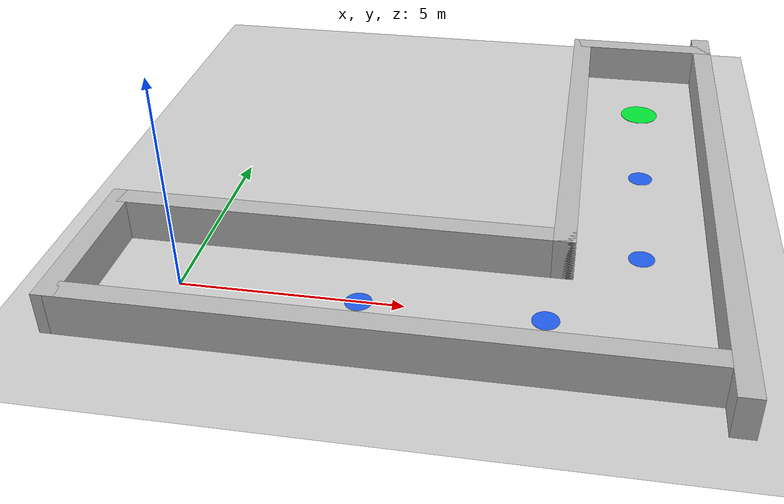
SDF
<?xml version="1.0" ?>
<sdf version="1.6">
  <world name="default">

    <physics type="ode">
      <real_time_factor>3</real_time_factor>
      <real_time_update_rate>3000</real_time_update_rate>
      <max_step_size>0.001</max_step_size>
    </physics>

    <include><uri>model://sun</uri></include>
    <include><uri>model://ground_plane</uri></include>

    <!-- ── Walls ─────────────────────────────────────────── -->

    <!-- South wall: runs full length of both corridors -->
    <model name="wall_south">
      <static>true</static>
      <pose>4.75 -1.75 0.5 0 0 0</pose>
      <link name="link">
        <collision name="c"><geometry><box><size>13.5 0.5 1.0</size></box></geometry></collision>
        <visual    name="v"><geometry><box><size>13.5 0.5 1.0</size></box></geometry>
          <material><script><uri>file://media/materials/scripts/gazebo.material</uri>
            <name>Gazebo/Brick</name></script></material>
        </visual>
      </link>
    </model>

    <!-- North wall of horizontal corridor (stops where vertical opens) -->
    <model name="wall_north_horiz">
      <static>true</static>
      <pose>3.25 1.75 0.5 0 0 0</pose>
      <link name="link">
        <collision name="c"><geometry><box><size>10.5 0.5 1.0</size></box></geometry></collision>
        <visual    name="v"><geometry><box><size>10.5 0.5 1.0</size></box></geometry>
          <material><script><uri>file://media/materials/scripts/gazebo.material</uri>
            <name>Gazebo/Brick</name></script></material>
        </visual>
      </link>
    </model>

    <!-- East wall: right side of vertical corridor -->
    <model name="wall_east">
      <static>true</static>
      <pose>11.75 5.0 0.5 0 0 0</pose>
      <link name="link">
        <collision name="c"><geometry><box><size>0.5 15.5 1.0</size></box></geometry></collision>
        <visual    name="v"><geometry><box><size>0.5 15.5 1.0</size></box></geometry>
          <material><script><uri>file://media/materials/scripts/gazebo.material</uri>
            <name>Gazebo/Brick</name></script></material>
        </visual>
      </link>
    </model>

    <!-- West wall of vertical corridor (inner left side) -->
    <model name="wall_west_vert">
      <static>true</static>
      <pose>8.25 6.875 0.5 0 0 0</pose>
      <link name="link">
        <collision name="c"><geometry><box><size>0.5 10.75 1.0</size></box></geometry></collision>
        <visual    name="v"><geometry><box><size>0.5 10.75 1.0</size></box></geometry>
          <material><script><uri>file://media/materials/scripts/gazebo.material</uri>
            <name>Gazebo/Brick</name></script></material>
        </visual>
      </link>
    </model>

    <!-- Start cap (west end of horizontal corridor) -->
    <model name="wall_start">
      <static>true</static>
      <pose>-2.0 0.0 0.5 0 0 0</pose>
      <link name="link">
        <collision name="c"><geometry><box><size>0.5 4.0 1.0</size></box></geometry></collision>
        <visual    name="v"><geometry><box><size>0.5 4.0 1.0</size></box></geometry>
          <material><script><uri>file://media/materials/scripts/gazebo.material</uri>
            <name>Gazebo/Brick</name></script></material>
        </visual>
      </link>
    </model>

    <!-- End cap (top of vertical corridor) -->
    <model name="wall_end">
      <static>true</static>
      <pose>10.0 12.0 0.5 0 0 0</pose>
      <link name="link">
        <collision name="c"><geometry><box><size>4.0 0.5 1.0</size></box></geometry></collision>
        <visual    name="v"><geometry><box><size>4.0 0.5 1.0</size></box></geometry>
          <material><script><uri>file://media/materials/scripts/gazebo.material</uri>
            <name>Gazebo/Brick</name></script></material>
        </visual>
      </link>
    </model>

    <!-- ── Waypoint markers (blue discs) ──────────────────── -->

    <model name="wp1_marker">
      <static>true</static><pose>4.0 0.0 0.005 0 0 0</pose>
      <link name="link">
        <visual name="v"><geometry><cylinder><radius>0.3</radius><length>0.01</length></cylinder></geometry>
          <material><ambient>0.0 0.3 1.0 0.8</ambient><diffuse>0.0 0.3 1.0 0.8</diffuse>
            <emissive>0.0 0.1 0.4 1.0</emissive></material>
        </visual>
      </link>
    </model>

    <model name="wp2_marker">
      <static>true</static><pose>8.0 0.0 0.005 0 0 0</pose>
      <link name="link">
        <visual name="v"><geometry><cylinder><radius>0.3</radius><length>0.01</length></cylinder></geometry>
          <material><ambient>0.0 0.3 1.0 0.8</ambient><diffuse>0.0 0.3 1.0 0.8</diffuse>
            <emissive>0.0 0.1 0.4 1.0</emissive></material>
        </visual>
      </link>
    </model>

    <model name="wp3_marker">
      <static>true</static><pose>10.0 2.5 0.005 0 0 0</pose>
      <link name="link">
        <visual name="v"><geometry><cylinder><radius>0.3</radius><length>0.01</length></cylinder></geometry>
          <material><ambient>0.0 0.3 1.0 0.8</ambient><diffuse>0.0 0.3 1.0 0.8</diffuse>
            <emissive>0.0 0.1 0.4 1.0</emissive></material>
        </visual>
      </link>
    </model>

    <model name="wp4_marker">
      <static>true</static><pose>10.0 6.0 0.005 0 0 0</pose>
      <link name="link">
        <visual name="v"><geometry><cylinder><radius>0.3</radius><length>0.01</length></cylinder></geometry>
          <material><ambient>0.0 0.3 1.0 0.8</ambient><diffuse>0.0 0.3 1.0 0.8</diffuse>
            <emissive>0.0 0.1 0.4 1.0</emissive></material>
        </visual>
      </link>
    </model>

    <!-- ── Goal marker (green disc) ───────────────────────── -->

    <model name="goal_marker">
      <static>true</static><pose>10.0 9.5 0.005 0 0 0</pose>
      <link name="link">
        <visual name="v"><geometry><cylinder><radius>0.5</radius><length>0.01</length></cylinder></geometry>
          <material><ambient>0.0 0.9 0.2 0.9</ambient><diffuse>0.0 0.9 0.2 0.9</diffuse>
            <emissive>0.0 0.4 0.1 1.0</emissive></material>
        </visual>
      </link>
    </model>

  </world>
</sdf>
